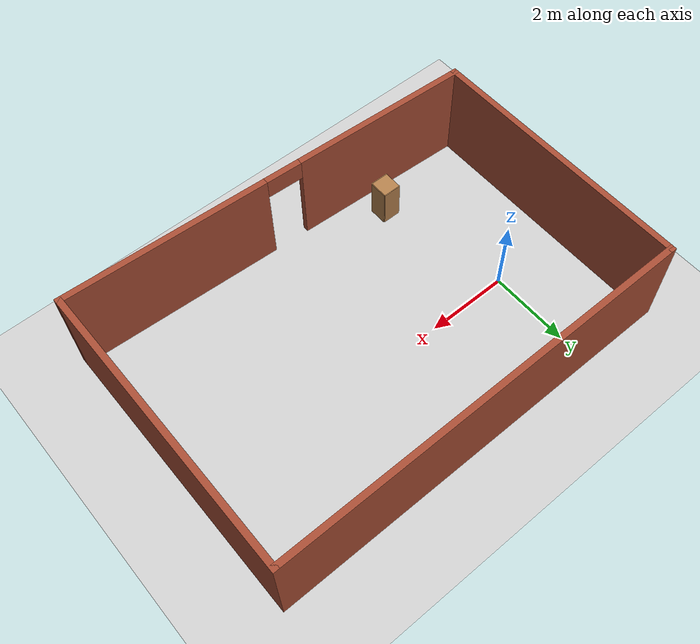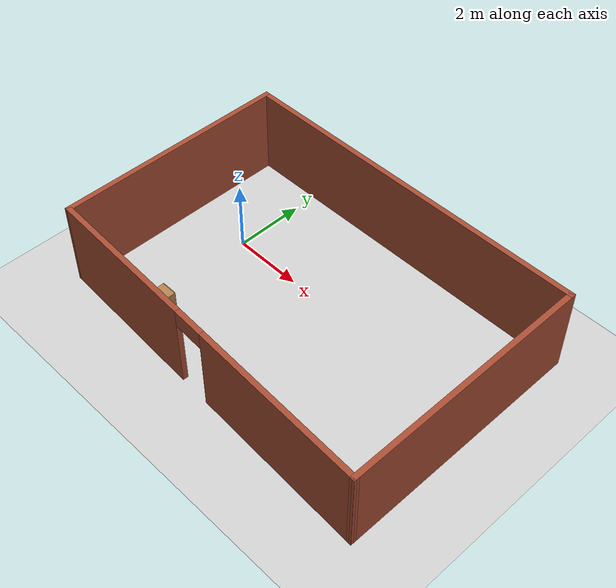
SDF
<sdf version="1.7">
 <world name="default">
  <light name="sun" type="directional">
   <pose>0 0 10 0 -0 0</pose>
   <diffuse>0.8 0.8 0.8 1</diffuse>
   <specular>0.2 0.2 0.2 1</specular>
   <attenuation>
    <range>1000</range>
    <constant>0.9</constant>
    <linear>0.01</linear>
    <quadratic>0.001</quadratic>
   </attenuation>
   <direction>-0.5 0.1 -0.9</direction>
   <spot><inner_angle>0</inner_angle><outer_angle>0</outer_angle><falloff>0</falloff></spot>
  </light>
  <model name="ground_plane">
   <static>1</static>
   <link name="link">
    <collision name="collision">
     <geometry><plane><normal>0 0 1</normal><size>100 100</size></plane></geometry>
     <surface>
      <contact><collide_bitmask>65535</collide_bitmask></contact>
      <friction><ode><mu>100</mu><mu2>50</mu2></ode></friction>
     </surface>
    </collision>
    <visual name="visual">
     <cast_shadows>0</cast_shadows>
     <geometry><plane><normal>0 0 1</normal><size>100 100</size></plane></geometry>
     <material>
      <script><uri>file://media/materials/scripts/gazebo.material</uri><name>Gazebo/Grey</name></script>
     </material>
    </visual>
   </link>
  </model>
  <gravity>0 0 -9.8</gravity>
  <magnetic_field>6e-06 2.3e-05 -4.2e-05</magnetic_field>
  <atmosphere type="adiabatic"/>
  <physics type="ode">
   <max_step_size>0.001</max_step_size>
   <real_time_factor>1</real_time_factor>
   <real_time_update_rate>1000</real_time_update_rate>
  </physics>
  <scene><ambient>0.4 0.4 0.4 1</ambient><background>0.7 0.7 0.7 1</background><shadows>1</shadows></scene>
  <audio><device>default</device></audio>
  <spherical_coordinates>
   <surface_model>EARTH_WGS84</surface_model>
   <latitude_deg>0</latitude_deg>
   <longitude_deg>0</longitude_deg>
   <elevation>0</elevation>
   <heading_deg>0</heading_deg>
  </spherical_coordinates>
  <model name="Untitled">
   <pose>3.225 -0.811766 0 0 -0 0</pose>
   <link name="Wall_3">
    <collision name="Wall_3_Collision">
     <geometry><box><size>6.75 0.15 2.5</size></box></geometry>
     <pose>0 0 1.25 0 -0 0</pose>
    </collision>
    <visual name="Wall_3_Visual">
     <pose>0 0 1.25 0 -0 0</pose>
     <geometry><box><size>6.75 0.15 2.5</size></box></geometry>
     <material>
      <script><uri>file://media/materials/scripts/gazebo.material</uri><name>Gazebo/Bricks</name></script>
      <ambient>1 1 1 1</ambient>
     </material>
     <meta><layer>0</layer></meta>
    </visual>
    <pose>-5.175 0.251766 0 0 -0 1.5708</pose>
   </link>
   <link name="Wall_4">
    <collision name="Wall_4_Collision">
     <geometry><box><size>10.5 0.15 2.5</size></box></geometry>
     <pose>0 0 1.25 0 -0 0</pose>
    </collision>
    <visual name="Wall_4_Visual">
     <pose>0 0 1.25 0 -0 0</pose>
     <geometry><box><size>10.5 0.15 2.5</size></box></geometry>
     <material>
      <script><uri>file://media/materials/scripts/gazebo.material</uri><name>Gazebo/Bricks</name></script>
      <ambient>1 1 1 1</ambient>
     </material>
     <meta><layer>0</layer></meta>
    </visual>
    <pose>-0 3.55177 0 0 -0 0</pose>
   </link>
   <link name="Wall_5">
    <collision name="Wall_5_Collision">
     <geometry><box><size>7.25 0.15 2.5</size></box></geometry>
     <pose>0 0 1.25 0 -0 0</pose>
    </collision>
    <visual name="Wall_5_Visual">
     <pose>0 0 1.25 0 -0 0</pose>
     <geometry><box><size>7.25 0.15 2.5</size></box></geometry>
     <material>
      <script><uri>file://media/materials/scripts/gazebo.material</uri><name>Gazebo/Bricks</name></script>
      <ambient>1 1 1 1</ambient>
     </material>
     <meta><layer>0</layer></meta>
    </visual>
    <pose>5.175 0.001766 0 0 -0 -1.5708</pose>
   </link>
   <link name="Wall_6">
    <pose>-0 -3.29823 0 0 -0 3.09332</pose>
    <visual name="Wall_6_Visual_0">
     <pose>-2.71309 0 1.25 0 -0 0</pose>
     <geometry><box><size>5.0859 0.15 2.5</size></box></geometry>
     <material>
      <script><uri>file://media/materials/scripts/gazebo.material</uri><name>Gazebo/Bricks</name></script>
      <ambient>1 1 1 1</ambient>
     </material>
     <meta><layer>0</layer></meta>
    </visual>
    <collision name="Wall_6_Collision_0">
     <geometry><box><size>5.0859 0.15 2.5</size></box></geometry>
     <pose>-2.71309 0 1.25 0 -0 0</pose>
    </collision>
    <visual name="Wall_6_Visual_1">
     <pose>2.99295 0 1.25 0 -0 0</pose>
     <geometry><box><size>4.52617 0.15 2.5</size></box></geometry>
     <material>
      <script><uri>file://media/materials/scripts/gazebo.material</uri><name>Gazebo/Bricks</name></script>
      <ambient>1 1 1 1</ambient>
     </material>
     <meta><layer>0</layer></meta>
    </visual>
    <collision name="Wall_6_Collision_1">
     <geometry><box><size>4.52617 0.15 2.5</size></box></geometry>
     <pose>2.99295 0 1.25 0 -0 0</pose>
    </collision>
    <visual name="Wall_6_Visual_2">
     <pose>0.279862 0 2.25 0 -0 0</pose>
     <geometry><box><size>0.9 0.15 0.5</size></box></geometry>
     <material>
      <script><uri>file://media/materials/scripts/gazebo.material</uri><name>Gazebo/Bricks</name></script>
      <ambient>1 1 1 1</ambient>
     </material>
     <meta><layer>0</layer></meta>
    </visual>
    <collision name="Wall_6_Collision_2">
     <geometry><box><size>0.9 0.15 0.5</size></box></geometry>
     <pose>0.279862 0 2.25 0 -0 0</pose>
    </collision>
   </link>
   <static>1</static>
  </model>
  <model name="cabinet">
   <static>1</static>
   <link name="cabinet_bottom_plate">
    <inertial>
     <pose>0 0 -1 0 -0 0</pose>
     <inertia><ixx>2.05</ixx><ixy>0</ixy><ixz>0</ixz><iyy>2.05</iyy><iyz>0</iyz><izz>2.05</izz></inertia>
     <mass>25</mass>
    </inertial>
    <collision name="cabinet_bottom_plate_geom">
     <pose>0 0 0.01 0 -0 0</pose>
     <geometry><box><size>0.45 0.45 0.02</size></box></geometry>
    </collision>
    <visual name="cabinet_bottom_plate_geom_visual">
     <pose>0 0 0.01 0 -0 0</pose>
     <geometry><box><size>0.45 0.45 0.02</size></box></geometry>
     <material>
      <script><uri>file://media/materials/scripts/gazebo.material</uri><name>Gazebo/Wood</name></script>
     </material>
    </visual>
    <collision name="cabinet_bottom_plate_geom_cabinet_back_plate">
     <pose>0.235 0 0.51 0 -0 0</pose>
     <geometry><box><size>0.02 0.45 1.02</size></box></geometry>
    </collision>
    <visual name="cabinet_bottom_plate_geom_cabinet_back_plate_visual">
     <pose>0.235 0 0.51 0 -0 0</pose>
     <geometry><box><size>0.02 0.45 1.02</size></box></geometry>
     <material>
      <script><uri>file://media/materials/scripts/gazebo.material</uri><name>Gazebo/Wood</name></script>
     </material>
    </visual>
    <collision name="cabinet_bottom_plate_geom_cabinet_left_plate">
     <pose>0 0.235 0.51 0 -0 0</pose>
     <geometry><box><size>0.45 0.02 1.02</size></box></geometry>
    </collision>
    <visual name="cabinet_bottom_plate_geom_cabinet_left_plate_visual">
     <pose>0 0.235 0.51 0 -0 0</pose>
     <geometry><box><size>0.45 0.02 1.02</size></box></geometry>
     <material>
      <script><uri>file://media/materials/scripts/gazebo.material</uri><name>Gazebo/Wood</name></script>
     </material>
    </visual>
    <collision name="cabinet_bottom_plate_geom_cabinet_middle_plate">
     <pose>0 0 0.51 0 -0 0</pose>
     <geometry><box><size>0.45 0.45 0.02</size></box></geometry>
    </collision>
    <visual name="cabinet_bottom_plate_geom_cabinet_middle_plate_visual">
     <pose>0 0 0.51 0 -0 0</pose>
     <geometry><box><size>0.45 0.45 0.02</size></box></geometry>
     <material>
      <script><uri>file://media/materials/scripts/gazebo.material</uri><name>Gazebo/Wood</name></script>
     </material>
    </visual>
    <collision name="cabinet_bottom_plate_geom_cabinet_right_plate">
     <pose>0 -0.235 0.51 0 -0 0</pose>
     <geometry><box><size>0.45 0.02 1.02</size></box></geometry>
    </collision>
    <visual name="cabinet_bottom_plate_geom_cabinet_right_plate_visual">
     <pose>0 -0.235 0.51 0 -0 0</pose>
     <geometry><box><size>0.45 0.02 1.02</size></box></geometry>
     <material>
      <script><uri>file://media/materials/scripts/gazebo.material</uri><name>Gazebo/Wood</name></script>
     </material>
    </visual>
    <collision name="cabinet_bottom_plate_geom_cabinet_top_plate">
     <pose>0 0 1.01 0 -0 0</pose>
     <geometry><box><size>0.45 0.45 0.02</size></box></geometry>
    </collision>
    <visual name="cabinet_bottom_plate_geom_cabinet_top_plate_visual">
     <pose>0 0 1.01 0 -0 0</pose>
     <geometry><box><size>0.45 0.45 0.02</size></box></geometry>
     <material>
      <script><uri>file://media/materials/scripts/gazebo.material</uri><name>Gazebo/Wood</name></script>
     </material>
    </visual>
   </link>
   <pose>0.685279 -3.24174 0 0 -0 0</pose>
  </model>
 </world>
</sdf>
